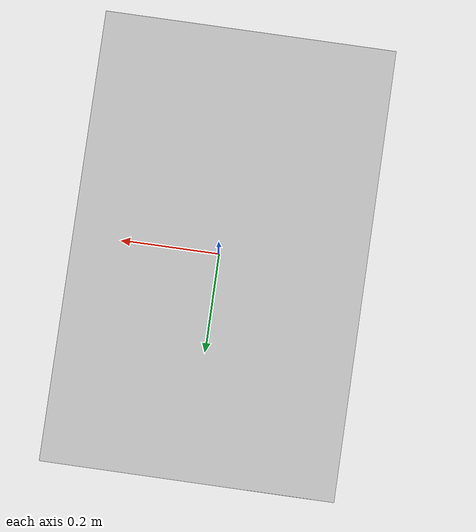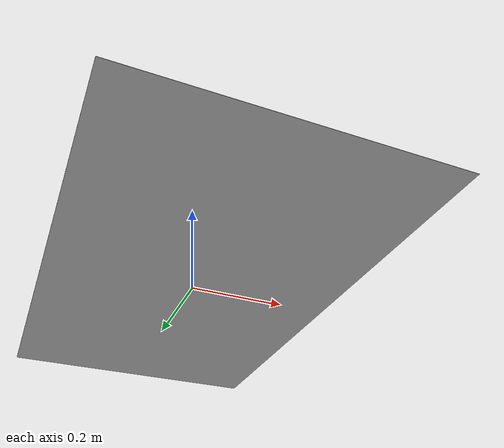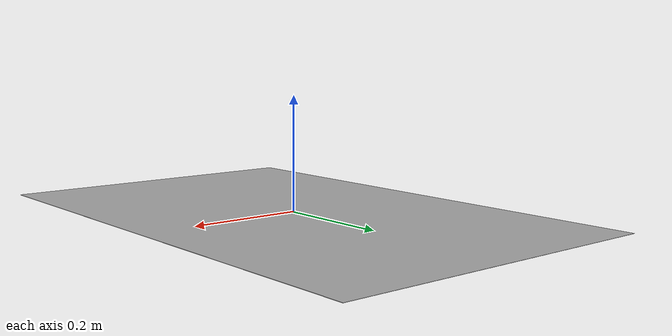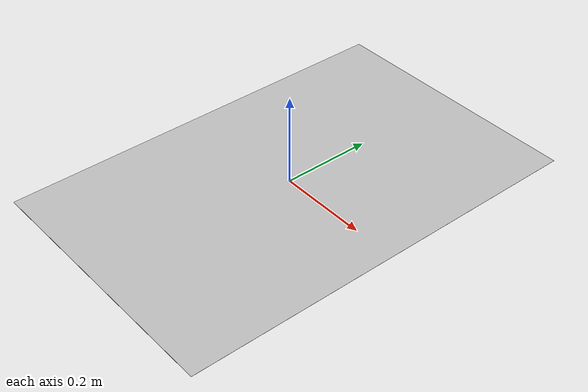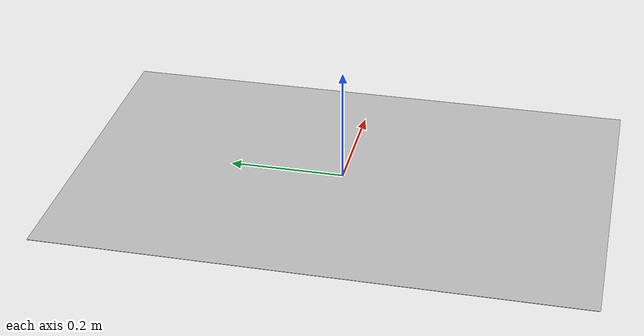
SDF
<?xml version="1.0" encoding="UTF-8"?>
<sdf version="1.4">
   <model name="vc_black_track_goal">
      <static>true</static>
      <link name="link">
         <collision name="collision">
            <geometry>
               <plane>
                  <normal>0 0 1</normal>
                  <size>0.596 0.925</size>
               </plane>
            </geometry>
            <surface>
               <friction>
                  <ode>
                     <mu>100</mu>
                     <mu2>50</mu2>
                  </ode>
               </friction>
            </surface>
         </collision>
         <visual name="visual">
            <cast_shadows>false</cast_shadows>
            <geometry>
               <plane>
                  <normal>0 0 1</normal>
                  <size>0.596 0.925</size>
               </plane>
            </geometry>
            <material>
               <script>
                  <uri>model://vc_black_track_goal/materials/scripts</uri>
                  <uri>model://vc_black_track_goal/materials/textures/</uri>
                  <name>VC_Black_Track_Goal/Image</name>
               </script>
            </material>
         </visual>
      </link>
   </model>
</sdf>
